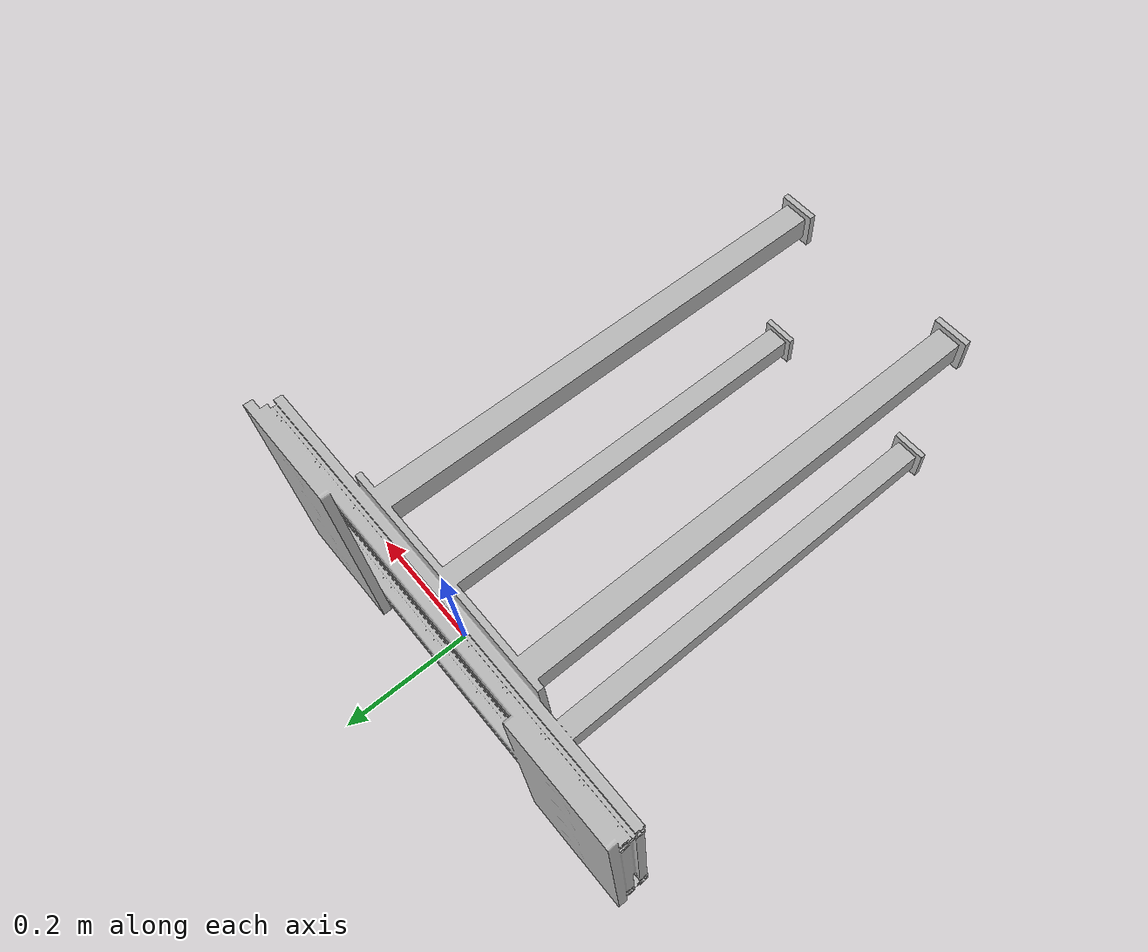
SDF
<?xml version="1.0" ?>
<sdf version="1.6">
  <model name="Setup">
    <static>true</static>
    <link name="link">
      <collision name="collision">
        <geometry>
          <mesh>
            <uri>model://Setup/meshes/setup.dae</uri>
          </mesh>
        </geometry>
      </collision>
      <visual name="visual">
        <geometry>
          <mesh>
            <uri>model://Setup/meshes/setup.dae</uri>
          </mesh>
        </geometry>
      </visual>
    </link>
  </model>
</sdf>
